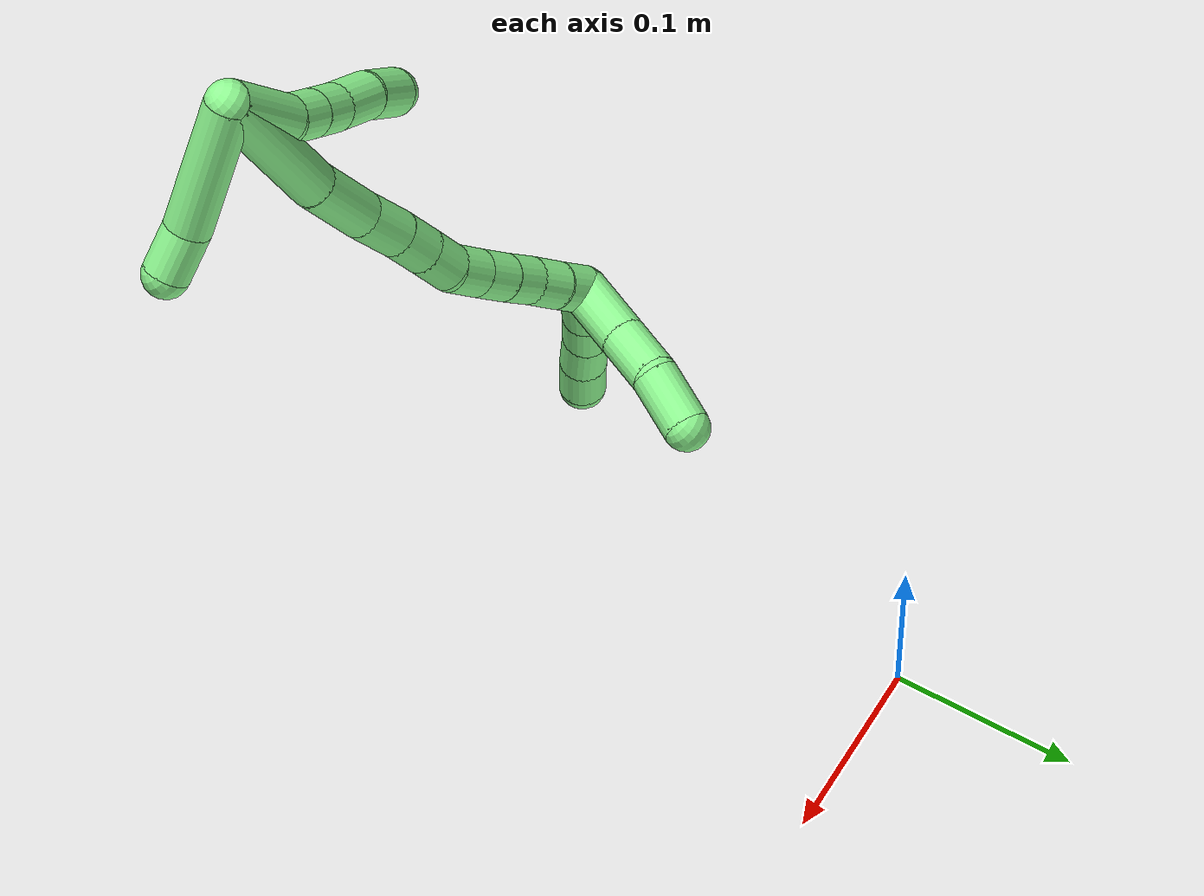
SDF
<sdf version="1.7">
 <world name="default">
  <model name="13">
   <static>0</static>
   <link name="13">
    <collision name="collision-cylinder-e_1_2_8">
     <pose>-0.012382 0.000265 -0.020167 -3.12847 -0.550575 3.09514</pose>
     <geometry><cylinder><radius>0.0125</radius><length>0.047333</length></cylinder></geometry>
     <surface>
      <friction><ode><mu>1.16</mu><mu2>1.16</mu2><slip1>0</slip1><slip2>0</slip2></ode></friction>
      <contact><ode><kp>1e+06</kp><kd>1</kd><max_vel>0</max_vel><min_depth>0.001</min_depth></ode></contact>
     </surface>
    </collision>
    <visual name="visual-cylinder-e_1_2_8">
     <pose>-0.012382 0.000265 -0.020167 -3.12847 -0.550575 3.09514</pose>
     <geometry><cylinder><radius>0.0125</radius><length>0.047333</length></cylinder></geometry>
     <material><ambient>0.564706 0.984314 0.572549 1</ambient></material>
    </visual>
    <collision name="collision-cylinder-e_2_8_9">
     <pose>-0.032703 0.001757 -0.047706 -2.97651 -0.815654 2.76322</pose>
     <geometry><cylinder><radius>0.0125</radius><length>0.021805</length></cylinder></geometry>
     <surface>
      <friction><ode><mu>1.16</mu><mu2>1.16</mu2><slip1>0</slip1><slip2>0</slip2></ode></friction>
      <contact><ode><kp>1e+06</kp><kd>1</kd><max_vel>0</max_vel><min_depth>0.001</min_depth></ode></contact>
     </surface>
    </collision>
    <visual name="visual-cylinder-e_2_8_9">
     <pose>-0.032703 0.001757 -0.047706 -2.97651 -0.815654 2.76322</pose>
     <geometry><cylinder><radius>0.0125</radius><length>0.021805</length></cylinder></geometry>
     <material><ambient>0.564706 0.984314 0.572549 1</ambient></material>
    </visual>
    <collision name="collision-cylinder-e_3_9_10">
     <pose>-0.048716 0.004151 -0.062374 -2.98316 -0.829661 2.78492</pose>
     <geometry><cylinder><radius>0.0125</radius><length>0.021892</length></cylinder></geometry>
     <surface>
      <friction><ode><mu>1.16</mu><mu2>1.16</mu2><slip1>0</slip1><slip2>0</slip2></ode></friction>
      <contact><ode><kp>1e+06</kp><kd>1</kd><max_vel>0</max_vel><min_depth>0.001</min_depth></ode></contact>
     </surface>
    </collision>
    <visual name="visual-cylinder-e_3_9_10">
     <pose>-0.048716 0.004151 -0.062374 -2.98316 -0.829661 2.78492</pose>
     <geometry><cylinder><radius>0.0125</radius><length>0.021892</length></cylinder></geometry>
     <material><ambient>0.564706 0.984314 0.572549 1</ambient></material>
    </visual>
    <collision name="collision-cylinder-e_4_10_11">
     <pose>-0.067627 0.008144 -0.078901 -2.84441 -0.843111 2.49723</pose>
     <geometry><cylinder><radius>0.0125</radius><length>0.029024</length></cylinder></geometry>
     <surface>
      <friction><ode><mu>1.16</mu><mu2>1.16</mu2><slip1>0</slip1><slip2>0</slip2></ode></friction>
      <contact><ode><kp>1e+06</kp><kd>1</kd><max_vel>0</max_vel><min_depth>0.001</min_depth></ode></contact>
     </surface>
    </collision>
    <visual name="visual-cylinder-e_4_10_11">
     <pose>-0.067627 0.008144 -0.078901 -2.84441 -0.843111 2.49723</pose>
     <geometry><cylinder><radius>0.0125</radius><length>0.029024</length></cylinder></geometry>
     <material><ambient>0.564706 0.984314 0.572549 1</ambient></material>
    </visual>
    <collision name="collision-cylinder-e_5_11_6">
     <pose>-0.089127 0.011486 -0.098629 -3.09248 -0.7926 3.02433</pose>
     <geometry><cylinder><radius>0.0125</radius><length>0.029946</length></cylinder></geometry>
     <surface>
      <friction><ode><mu>1.16</mu><mu2>1.16</mu2><slip1>0</slip1><slip2>0</slip2></ode></friction>
      <contact><ode><kp>1e+06</kp><kd>1</kd><max_vel>0</max_vel><min_depth>0.001</min_depth></ode></contact>
     </surface>
    </collision>
    <visual name="visual-cylinder-e_5_11_6">
     <pose>-0.089127 0.011486 -0.098629 -3.09248 -0.7926 3.02433</pose>
     <geometry><cylinder><radius>0.0125</radius><length>0.029946</length></cylinder></geometry>
     <material><ambient>0.564706 0.984314 0.572549 1</ambient></material>
    </visual>
    <collision name="collision-cylinder-e_1_2_12">
     <pose>0.002033 -0.032184 -0.017875 2.07777 0.055178 0.093719</pose>
     <geometry><cylinder><radius>0.0125</radius><length>0.073742</length></cylinder></geometry>
     <surface>
      <friction><ode><mu>1.16</mu><mu2>1.16</mu2><slip1>0</slip1><slip2>0</slip2></ode></friction>
      <contact><ode><kp>1e+06</kp><kd>1</kd><max_vel>0</max_vel><min_depth>0.001</min_depth></ode></contact>
     </surface>
    </collision>
    <visual name="visual-cylinder-e_1_2_12">
     <pose>0.002033 -0.032184 -0.017875 2.07777 0.055178 0.093719</pose>
     <geometry><cylinder><radius>0.0125</radius><length>0.073742</length></cylinder></geometry>
     <material><ambient>0.564706 0.984314 0.572549 1</ambient></material>
    </visual>
    <collision name="collision-cylinder-e_2_12_5">
     <pose>0.007046 -0.076379 -0.040136 1.92093 0.228938 0.325852</pose>
     <geometry><cylinder><radius>0.0125</radius><length>0.026258</length></cylinder></geometry>
     <surface>
      <friction><ode><mu>1.16</mu><mu2>1.16</mu2><slip1>0</slip1><slip2>0</slip2></ode></friction>
      <contact><ode><kp>1e+06</kp><kd>1</kd><max_vel>0</max_vel><min_depth>0.001</min_depth></ode></contact>
     </surface>
    </collision>
    <visual name="visual-cylinder-e_2_12_5">
     <pose>0.007046 -0.076379 -0.040136 1.92093 0.228938 0.325852</pose>
     <geometry><cylinder><radius>0.0125</radius><length>0.026258</length></cylinder></geometry>
     <material><ambient>0.564706 0.984314 0.572549 1</ambient></material>
    </visual>
    <collision name="collision-cylinder-e_1_2_13">
     <pose>-0.014163 -0.010078 -0.039748 2.89329 -0.332569 -1.86286</pose>
     <geometry><cylinder><radius>0.0125</radius><length>0.086765</length></cylinder></geometry>
     <surface>
      <friction><ode><mu>1.16</mu><mu2>1.16</mu2><slip1>0</slip1><slip2>0</slip2></ode></friction>
      <contact><ode><kp>1e+06</kp><kd>1</kd><max_vel>0</max_vel><min_depth>0.001</min_depth></ode></contact>
     </surface>
    </collision>
    <visual name="visual-cylinder-e_1_2_13">
     <pose>-0.014163 -0.010078 -0.039748 2.89329 -0.332569 -1.86286</pose>
     <geometry><cylinder><radius>0.0125</radius><length>0.086765</length></cylinder></geometry>
     <material><ambient>0.564706 0.984314 0.572549 1</ambient></material>
    </visual>
    <collision name="collision-cylinder-e_2_13_14">
     <pose>-0.035937 -0.022443 -0.099179 3.0259 -0.366687 -2.53618</pose>
     <geometry><cylinder><radius>0.0125</radius><length>0.042454</length></cylinder></geometry>
     <surface>
      <friction><ode><mu>1.16</mu><mu2>1.16</mu2><slip1>0</slip1><slip2>0</slip2></ode></friction>
      <contact><ode><kp>1e+06</kp><kd>1</kd><max_vel>0</max_vel><min_depth>0.001</min_depth></ode></contact>
     </surface>
    </collision>
    <visual name="visual-cylinder-e_2_13_14">
     <pose>-0.035937 -0.022443 -0.099179 3.0259 -0.366687 -2.53618</pose>
     <geometry><cylinder><radius>0.0125</radius><length>0.042454</length></cylinder></geometry>
     <material><ambient>0.564706 0.984314 0.572549 1</ambient></material>
    </visual>
    <collision name="collision-cylinder-e_3_14_15">
     <pose>-0.047472 -0.024733 -0.13204 3.14136 -0.289482 -3.13998</pose>
     <geometry><cylinder><radius>0.0125</radius><length>0.027501</length></cylinder></geometry>
     <surface>
      <friction><ode><mu>1.16</mu><mu2>1.16</mu2><slip1>0</slip1><slip2>0</slip2></ode></friction>
      <contact><ode><kp>1e+06</kp><kd>1</kd><max_vel>0</max_vel><min_depth>0.001</min_depth></ode></contact>
     </surface>
    </collision>
    <visual name="visual-cylinder-e_3_14_15">
     <pose>-0.047472 -0.024733 -0.13204 3.14136 -0.289482 -3.13998</pose>
     <geometry><cylinder><radius>0.0125</radius><length>0.027501</length></cylinder></geometry>
     <material><ambient>0.564706 0.984314 0.572549 1</ambient></material>
    </visual>
    <collision name="collision-cylinder-e_4_15_16">
     <pose>-0.05407 -0.025218 -0.155539 3.09493 -0.253166 -2.77892</pose>
     <geometry><cylinder><radius>0.0125</radius><length>0.021344</length></cylinder></geometry>
     <surface>
      <friction><ode><mu>1.16</mu><mu2>1.16</mu2><slip1>0</slip1><slip2>0</slip2></ode></friction>
      <contact><ode><kp>1e+06</kp><kd>1</kd><max_vel>0</max_vel><min_depth>0.001</min_depth></ode></contact>
     </surface>
    </collision>
    <visual name="visual-cylinder-e_4_15_16">
     <pose>-0.05407 -0.025218 -0.155539 3.09493 -0.253166 -2.77892</pose>
     <geometry><cylinder><radius>0.0125</radius><length>0.021344</length></cylinder></geometry>
     <material><ambient>0.564706 0.984314 0.572549 1</ambient></material>
    </visual>
    <collision name="collision-cylinder-e_5_16_17">
     <pose>-0.059106 -0.026158 -0.176201 3.09734 -0.224374 -2.75364</pose>
     <geometry><cylinder><radius>0.0125</radius><length>0.021234</length></cylinder></geometry>
     <surface>
      <friction><ode><mu>1.16</mu><mu2>1.16</mu2><slip1>0</slip1><slip2>0</slip2></ode></friction>
      <contact><ode><kp>1e+06</kp><kd>1</kd><max_vel>0</max_vel><min_depth>0.001</min_depth></ode></contact>
     </surface>
    </collision>
    <visual name="visual-cylinder-e_5_16_17">
     <pose>-0.059106 -0.026158 -0.176201 3.09734 -0.224374 -2.75364</pose>
     <geometry><cylinder><radius>0.0125</radius><length>0.021234</length></cylinder></geometry>
     <material><ambient>0.564706 0.984314 0.572549 1</ambient></material>
    </visual>
    <collision name="collision-cylinder-e_6_17_18">
     <pose>-0.06601 -0.025306 -0.195423 -2.99522 -0.46836 2.54525</pose>
     <geometry><cylinder><radius>0.0125</radius><length>0.020122</length></cylinder></geometry>
     <surface>
      <friction><ode><mu>1.16</mu><mu2>1.16</mu2><slip1>0</slip1><slip2>0</slip2></ode></friction>
      <contact><ode><kp>1e+06</kp><kd>1</kd><max_vel>0</max_vel><min_depth>0.001</min_depth></ode></contact>
     </surface>
    </collision>
    <visual name="visual-cylinder-e_6_17_18">
     <pose>-0.06601 -0.025306 -0.195423 -2.99522 -0.46836 2.54525</pose>
     <geometry><cylinder><radius>0.0125</radius><length>0.020122</length></cylinder></geometry>
     <material><ambient>0.564706 0.984314 0.572549 1</ambient></material>
    </visual>
    <collision name="collision-cylinder-e_7_18_19">
     <pose>-0.075242 -0.022573 -0.213299 -2.98459 -0.475634 2.51401</pose>
     <geometry><cylinder><radius>0.0125</radius><length>0.020488</length></cylinder></geometry>
     <surface>
      <friction><ode><mu>1.16</mu><mu2>1.16</mu2><slip1>0</slip1><slip2>0</slip2></ode></friction>
      <contact><ode><kp>1e+06</kp><kd>1</kd><max_vel>0</max_vel><min_depth>0.001</min_depth></ode></contact>
     </surface>
    </collision>
    <visual name="visual-cylinder-e_7_18_19">
     <pose>-0.075242 -0.022573 -0.213299 -2.98459 -0.475634 2.51401</pose>
     <geometry><cylinder><radius>0.0125</radius><length>0.020488</length></cylinder></geometry>
     <material><ambient>0.564706 0.984314 0.572549 1</ambient></material>
    </visual>
    <collision name="collision-cylinder-e_8_19_20">
     <pose>-0.084921 -0.019819 -0.230891 -2.98808 -0.520656 2.57945</pose>
     <geometry><cylinder><radius>0.0125</radius><length>0.020058</length></cylinder></geometry>
     <surface>
      <friction><ode><mu>1.16</mu><mu2>1.16</mu2><slip1>0</slip1><slip2>0</slip2></ode></friction>
      <contact><ode><kp>1e+06</kp><kd>1</kd><max_vel>0</max_vel><min_depth>0.001</min_depth></ode></contact>
     </surface>
    </collision>
    <visual name="visual-cylinder-e_8_19_20">
     <pose>-0.084921 -0.019819 -0.230891 -2.98808 -0.520656 2.57945</pose>
     <geometry><cylinder><radius>0.0125</radius><length>0.020058</length></cylinder></geometry>
     <material><ambient>0.564706 0.984314 0.572549 1</ambient></material>
    </visual>
    <collision name="collision-cylinder-e_9_20_21">
     <pose>-0.093894 -0.016599 -0.248469 -2.93416 -0.409593 2.21247</pose>
     <geometry><cylinder><radius>0.0125</radius><length>0.020008</length></cylinder></geometry>
     <surface>
      <friction><ode><mu>1.16</mu><mu2>1.16</mu2><slip1>0</slip1><slip2>0</slip2></ode></friction>
      <contact><ode><kp>1e+06</kp><kd>1</kd><max_vel>0</max_vel><min_depth>0.001</min_depth></ode></contact>
     </surface>
    </collision>
    <visual name="visual-cylinder-e_9_20_21">
     <pose>-0.093894 -0.016599 -0.248469 -2.93416 -0.409593 2.21247</pose>
     <geometry><cylinder><radius>0.0125</radius><length>0.020008</length></cylinder></geometry>
     <material><ambient>0.564706 0.984314 0.572549 1</ambient></material>
    </visual>
    <collision name="collision-cylinder-e_10_21_1">
     <pose>-0.102493 -0.013238 -0.266213 -2.97534 -0.478951 2.48389</pose>
     <geometry><cylinder><radius>0.0125</radius><length>0.020028</length></cylinder></geometry>
     <surface>
      <friction><ode><mu>1.16</mu><mu2>1.16</mu2><slip1>0</slip1><slip2>0</slip2></ode></friction>
      <contact><ode><kp>1e+06</kp><kd>1</kd><max_vel>0</max_vel><min_depth>0.001</min_depth></ode></contact>
     </surface>
    </collision>
    <visual name="visual-cylinder-e_10_21_1">
     <pose>-0.102493 -0.013238 -0.266213 -2.97534 -0.478951 2.48389</pose>
     <geometry><cylinder><radius>0.0125</radius><length>0.020028</length></cylinder></geometry>
     <material><ambient>0.564706 0.984314 0.572549 1</ambient></material>
    </visual>
    <collision name="collision-cylinder-e_1_1_22">
     <pose>-0.091742 -0.008192 -0.28433 -2.77643 0.993266 -2.48486</pose>
     <geometry><cylinder><radius>0.0125</radius><length>0.036682</length></cylinder></geometry>
     <surface>
      <friction><ode><mu>1.16</mu><mu2>1.16</mu2><slip1>0</slip1><slip2>0</slip2></ode></friction>
      <contact><ode><kp>1e+06</kp><kd>1</kd><max_vel>0</max_vel><min_depth>0.001</min_depth></ode></contact>
     </surface>
    </collision>
    <visual name="visual-cylinder-e_1_1_22">
     <pose>-0.091742 -0.008192 -0.28433 -2.77643 0.993266 -2.48486</pose>
     <geometry><cylinder><radius>0.0125</radius><length>0.036682</length></cylinder></geometry>
     <material><ambient>0.564706 0.984314 0.572549 1</ambient></material>
    </visual>
    <collision name="collision-cylinder-e_2_22_23">
     <pose>-0.062764 -0.000983 -0.299615 -2.59207 1.09835 -2.27828</pose>
     <geometry><cylinder><radius>0.0125</radius><length>0.030571</length></cylinder></geometry>
     <surface>
      <friction><ode><mu>1.16</mu><mu2>1.16</mu2><slip1>0</slip1><slip2>0</slip2></ode></friction>
      <contact><ode><kp>1e+06</kp><kd>1</kd><max_vel>0</max_vel><min_depth>0.001</min_depth></ode></contact>
     </surface>
    </collision>
    <visual name="visual-cylinder-e_2_22_23">
     <pose>-0.062764 -0.000983 -0.299615 -2.59207 1.09835 -2.27828</pose>
     <geometry><cylinder><radius>0.0125</radius><length>0.030571</length></cylinder></geometry>
     <material><ambient>0.564706 0.984314 0.572549 1</ambient></material>
    </visual>
    <collision name="collision-cylinder-e_3_23_4">
     <pose>-0.035913 0.003165 -0.315167 -3.08808 0.941752 -3.03656</pose>
     <geometry><cylinder><radius>0.0125</radius><length>0.032747</length></cylinder></geometry>
     <surface>
      <friction><ode><mu>1.16</mu><mu2>1.16</mu2><slip1>0</slip1><slip2>0</slip2></ode></friction>
      <contact><ode><kp>1e+06</kp><kd>1</kd><max_vel>0</max_vel><min_depth>0.001</min_depth></ode></contact>
     </surface>
    </collision>
    <visual name="visual-cylinder-e_3_23_4">
     <pose>-0.035913 0.003165 -0.315167 -3.08808 0.941752 -3.03656</pose>
     <geometry><cylinder><radius>0.0125</radius><length>0.032747</length></cylinder></geometry>
     <material><ambient>0.564706 0.984314 0.572549 1</ambient></material>
    </visual>
    <collision name="collision-cylinder-e_1_1_24">
     <pose>-0.112083 -0.019625 -0.285049 2.47909 -0.371409 -0.999922</pose>
     <geometry><cylinder><radius>0.0125</radius><length>0.027418</length></cylinder></geometry>
     <surface>
      <friction><ode><mu>1.16</mu><mu2>1.16</mu2><slip1>0</slip1><slip2>0</slip2></ode></friction>
      <contact><ode><kp>1e+06</kp><kd>1</kd><max_vel>0</max_vel><min_depth>0.001</min_depth></ode></contact>
     </surface>
    </collision>
    <visual name="visual-cylinder-e_1_1_24">
     <pose>-0.112083 -0.019625 -0.285049 2.47909 -0.371409 -0.999922</pose>
     <geometry><cylinder><radius>0.0125</radius><length>0.027418</length></cylinder></geometry>
     <material><ambient>0.564706 0.984314 0.572549 1</ambient></material>
    </visual>
    <collision name="collision-cylinder-e_2_24_25">
     <pose>-0.12133 -0.034371 -0.303138 2.43171 -0.38408 -0.966259</pose>
     <geometry><cylinder><radius>0.0125</radius><length>0.022801</length></cylinder></geometry>
     <surface>
      <friction><ode><mu>1.16</mu><mu2>1.16</mu2><slip1>0</slip1><slip2>0</slip2></ode></friction>
      <contact><ode><kp>1e+06</kp><kd>1</kd><max_vel>0</max_vel><min_depth>0.001</min_depth></ode></contact>
     </surface>
    </collision>
    <visual name="visual-cylinder-e_2_24_25">
     <pose>-0.12133 -0.034371 -0.303138 2.43171 -0.38408 -0.966259</pose>
     <geometry><cylinder><radius>0.0125</radius><length>0.022801</length></cylinder></geometry>
     <material><ambient>0.564706 0.984314 0.572549 1</ambient></material>
    </visual>
    <collision name="collision-cylinder-e_3_25_26">
     <pose>-0.130408 -0.049709 -0.319731 2.3637 -0.379818 -0.877159</pose>
     <geometry><cylinder><radius>0.0125</radius><length>0.025925</length></cylinder></geometry>
     <surface>
      <friction><ode><mu>1.16</mu><mu2>1.16</mu2><slip1>0</slip1><slip2>0</slip2></ode></friction>
      <contact><ode><kp>1e+06</kp><kd>1</kd><max_vel>0</max_vel><min_depth>0.001</min_depth></ode></contact>
     </surface>
    </collision>
    <visual name="visual-cylinder-e_3_25_26">
     <pose>-0.130408 -0.049709 -0.319731 2.3637 -0.379818 -0.877159</pose>
     <geometry><cylinder><radius>0.0125</radius><length>0.025925</length></cylinder></geometry>
     <material><ambient>0.564706 0.984314 0.572549 1</ambient></material>
    </visual>
    <collision name="collision-cylinder-e_4_26_3">
     <pose>-0.138836 -0.06581 -0.33671 2.40287 -0.308529 -0.763903</pose>
     <geometry><cylinder><radius>0.0125</radius><length>0.023855</length></cylinder></geometry>
     <surface>
      <friction><ode><mu>1.16</mu><mu2>1.16</mu2><slip1>0</slip1><slip2>0</slip2></ode></friction>
      <contact><ode><kp>1e+06</kp><kd>1</kd><max_vel>0</max_vel><min_depth>0.001</min_depth></ode></contact>
     </surface>
    </collision>
    <visual name="visual-cylinder-e_4_26_3">
     <pose>-0.138836 -0.06581 -0.33671 2.40287 -0.308529 -0.763903</pose>
     <geometry><cylinder><radius>0.0125</radius><length>0.023855</length></cylinder></geometry>
     <material><ambient>0.564706 0.984314 0.572549 1</ambient></material>
    </visual>
    <collision name="collision-sphere-3">
     <pose>-0.142458 -0.073462 -0.345112 0 -0 0</pose>
     <geometry><sphere><radius>0.0125</radius></sphere></geometry>
     <surface>
      <friction><ode><mu>1.16</mu><mu2>1.16</mu2><slip1>0</slip1><slip2>0</slip2></ode></friction>
      <contact><ode><kp>1e+06</kp><kd>1</kd><max_vel>0</max_vel><min_depth>0.001</min_depth></ode></contact>
     </surface>
    </collision>
    <visual name="visual-sphere-3">
     <pose>-0.142458 -0.073462 -0.345112 0 -0 0</pose>
     <geometry><sphere><radius>0.0125</radius></sphere></geometry>
     <material><ambient>0.564706 0.984314 0.572549 1</ambient></material>
    </visual>
    <collision name="collision-sphere-26">
     <pose>-0.135214 -0.058157 -0.328307 0 -0 0</pose>
     <geometry><sphere><radius>0.0125</radius></sphere></geometry>
     <surface>
      <friction><ode><mu>1.16</mu><mu2>1.16</mu2><slip1>0</slip1><slip2>0</slip2></ode></friction>
      <contact><ode><kp>1e+06</kp><kd>1</kd><max_vel>0</max_vel><min_depth>0.001</min_depth></ode></contact>
     </surface>
    </collision>
    <visual name="visual-sphere-26">
     <pose>-0.135214 -0.058157 -0.328307 0 -0 0</pose>
     <geometry><sphere><radius>0.0125</radius></sphere></geometry>
     <material><ambient>0.564706 0.984314 0.572549 1</ambient></material>
    </visual>
    <collision name="collision-sphere-25">
     <pose>-0.125602 -0.04126 -0.311154 0 -0 0</pose>
     <geometry><sphere><radius>0.0125</radius></sphere></geometry>
     <surface>
      <friction><ode><mu>1.16</mu><mu2>1.16</mu2><slip1>0</slip1><slip2>0</slip2></ode></friction>
      <contact><ode><kp>1e+06</kp><kd>1</kd><max_vel>0</max_vel><min_depth>0.001</min_depth></ode></contact>
     </surface>
    </collision>
    <visual name="visual-sphere-25">
     <pose>-0.125602 -0.04126 -0.311154 0 -0 0</pose>
     <geometry><sphere><radius>0.0125</radius></sphere></geometry>
     <material><ambient>0.564706 0.984314 0.572549 1</ambient></material>
    </visual>
    <collision name="collision-sphere-24">
     <pose>-0.117059 -0.027482 -0.295121 0 -0 0</pose>
     <geometry><sphere><radius>0.0125</radius></sphere></geometry>
     <surface>
      <friction><ode><mu>1.16</mu><mu2>1.16</mu2><slip1>0</slip1><slip2>0</slip2></ode></friction>
      <contact><ode><kp>1e+06</kp><kd>1</kd><max_vel>0</max_vel><min_depth>0.001</min_depth></ode></contact>
     </surface>
    </collision>
    <visual name="visual-sphere-24">
     <pose>-0.117059 -0.027482 -0.295121 0 -0 0</pose>
     <geometry><sphere><radius>0.0125</radius></sphere></geometry>
     <material><ambient>0.564706 0.984314 0.572549 1</ambient></material>
    </visual>
    <collision name="collision-sphere-4">
     <pose>-0.022674 0.00368 -0.324787 0 -0 0</pose>
     <geometry><sphere><radius>0.0125</radius></sphere></geometry>
     <surface>
      <friction><ode><mu>1.16</mu><mu2>1.16</mu2><slip1>0</slip1><slip2>0</slip2></ode></friction>
      <contact><ode><kp>1e+06</kp><kd>1</kd><max_vel>0</max_vel><min_depth>0.001</min_depth></ode></contact>
     </surface>
    </collision>
    <visual name="visual-sphere-4">
     <pose>-0.022674 0.00368 -0.324787 0 -0 0</pose>
     <geometry><sphere><radius>0.0125</radius></sphere></geometry>
     <material><ambient>0.564706 0.984314 0.572549 1</ambient></material>
    </visual>
    <collision name="collision-sphere-23">
     <pose>-0.049153 0.00265 -0.305547 0 -0 0</pose>
     <geometry><sphere><radius>0.0125</radius></sphere></geometry>
     <surface>
      <friction><ode><mu>1.16</mu><mu2>1.16</mu2><slip1>0</slip1><slip2>0</slip2></ode></friction>
      <contact><ode><kp>1e+06</kp><kd>1</kd><max_vel>0</max_vel><min_depth>0.001</min_depth></ode></contact>
     </surface>
    </collision>
    <visual name="visual-sphere-23">
     <pose>-0.049153 0.00265 -0.305547 0 -0 0</pose>
     <geometry><sphere><radius>0.0125</radius></sphere></geometry>
     <material><ambient>0.564706 0.984314 0.572549 1</ambient></material>
    </visual>
    <collision name="collision-sphere-22">
     <pose>-0.076375 -0.004616 -0.293684 0 -0 0</pose>
     <geometry><sphere><radius>0.0125</radius></sphere></geometry>
     <surface>
      <friction><ode><mu>1.16</mu><mu2>1.16</mu2><slip1>0</slip1><slip2>0</slip2></ode></friction>
      <contact><ode><kp>1e+06</kp><kd>1</kd><max_vel>0</max_vel><min_depth>0.001</min_depth></ode></contact>
     </surface>
    </collision>
    <visual name="visual-sphere-22">
     <pose>-0.076375 -0.004616 -0.293684 0 -0 0</pose>
     <geometry><sphere><radius>0.0125</radius></sphere></geometry>
     <material><ambient>0.564706 0.984314 0.572549 1</ambient></material>
    </visual>
    <collision name="collision-sphere-1">
     <pose>-0.107108 -0.011768 -0.274977 0 -0 0</pose>
     <geometry><sphere><radius>0.0125</radius></sphere></geometry>
     <surface>
      <friction><ode><mu>1.16</mu><mu2>1.16</mu2><slip1>0</slip1><slip2>0</slip2></ode></friction>
      <contact><ode><kp>1e+06</kp><kd>1</kd><max_vel>0</max_vel><min_depth>0.001</min_depth></ode></contact>
     </surface>
    </collision>
    <visual name="visual-sphere-1">
     <pose>-0.107108 -0.011768 -0.274977 0 -0 0</pose>
     <geometry><sphere><radius>0.0125</radius></sphere></geometry>
     <material><ambient>0.564706 0.984314 0.572549 1</ambient></material>
    </visual>
    <collision name="collision-sphere-21">
     <pose>-0.097878 -0.014709 -0.257448 0 -0 0</pose>
     <geometry><sphere><radius>0.0125</radius></sphere></geometry>
     <surface>
      <friction><ode><mu>1.16</mu><mu2>1.16</mu2><slip1>0</slip1><slip2>0</slip2></ode></friction>
      <contact><ode><kp>1e+06</kp><kd>1</kd><max_vel>0</max_vel><min_depth>0.001</min_depth></ode></contact>
     </surface>
    </collision>
    <visual name="visual-sphere-21">
     <pose>-0.097878 -0.014709 -0.257448 0 -0 0</pose>
     <geometry><sphere><radius>0.0125</radius></sphere></geometry>
     <material><ambient>0.564706 0.984314 0.572549 1</ambient></material>
    </visual>
    <collision name="collision-sphere-6">
     <pose>-0.099791 0.012002 -0.109127 0 -0 0</pose>
     <geometry><sphere><radius>0.0125</radius></sphere></geometry>
     <surface>
      <friction><ode><mu>1.16</mu><mu2>1.16</mu2><slip1>0</slip1><slip2>0</slip2></ode></friction>
      <contact><ode><kp>1e+06</kp><kd>1</kd><max_vel>0</max_vel><min_depth>0.001</min_depth></ode></contact>
     </surface>
    </collision>
    <visual name="visual-sphere-6">
     <pose>-0.099791 0.012002 -0.109127 0 -0 0</pose>
     <geometry><sphere><radius>0.0125</radius></sphere></geometry>
     <material><ambient>0.564706 0.984314 0.572549 1</ambient></material>
    </visual>
    <collision name="collision-sphere-11">
     <pose>-0.078464 0.01097 -0.08813 0 -0 0</pose>
     <geometry><sphere><radius>0.0125</radius></sphere></geometry>
     <surface>
      <friction><ode><mu>1.16</mu><mu2>1.16</mu2><slip1>0</slip1><slip2>0</slip2></ode></friction>
      <contact><ode><kp>1e+06</kp><kd>1</kd><max_vel>0</max_vel><min_depth>0.001</min_depth></ode></contact>
     </surface>
    </collision>
    <visual name="visual-sphere-11">
     <pose>-0.078464 0.01097 -0.08813 0 -0 0</pose>
     <geometry><sphere><radius>0.0125</radius></sphere></geometry>
     <material><ambient>0.564706 0.984314 0.572549 1</ambient></material>
    </visual>
    <collision name="collision-sphere-10">
     <pose>-0.056791 0.005317 -0.069672 0 -0 0</pose>
     <geometry><sphere><radius>0.0125</radius></sphere></geometry>
     <surface>
      <friction><ode><mu>1.16</mu><mu2>1.16</mu2><slip1>0</slip1><slip2>0</slip2></ode></friction>
      <contact><ode><kp>1e+06</kp><kd>1</kd><max_vel>0</max_vel><min_depth>0.001</min_depth></ode></contact>
     </surface>
    </collision>
    <visual name="visual-sphere-10">
     <pose>-0.056791 0.005317 -0.069672 0 -0 0</pose>
     <geometry><sphere><radius>0.0125</radius></sphere></geometry>
     <material><ambient>0.564706 0.984314 0.572549 1</ambient></material>
    </visual>
    <collision name="collision-sphere-9">
     <pose>-0.040642 0.002985 -0.055077 0 -0 0</pose>
     <geometry><sphere><radius>0.0125</radius></sphere></geometry>
     <surface>
      <friction><ode><mu>1.16</mu><mu2>1.16</mu2><slip1>0</slip1><slip2>0</slip2></ode></friction>
      <contact><ode><kp>1e+06</kp><kd>1</kd><max_vel>0</max_vel><min_depth>0.001</min_depth></ode></contact>
     </surface>
    </collision>
    <visual name="visual-sphere-9">
     <pose>-0.040642 0.002985 -0.055077 0 -0 0</pose>
     <geometry><sphere><radius>0.0125</radius></sphere></geometry>
     <material><ambient>0.564706 0.984314 0.572549 1</ambient></material>
    </visual>
    <collision name="collision-sphere-2">
     <geometry><sphere><radius>0.0125</radius></sphere></geometry>
     <surface>
      <friction><ode><mu>1.16</mu><mu2>1.16</mu2><slip1>0</slip1><slip2>0</slip2></ode></friction>
      <contact><ode><kp>1e+06</kp><kd>1</kd><max_vel>0</max_vel><min_depth>0.001</min_depth></ode></contact>
     </surface>
    </collision>
    <visual name="visual-sphere-2">
     <geometry><sphere><radius>0.0125</radius></sphere></geometry>
     <material><ambient>0.564706 0.984314 0.572549 1</ambient></material>
    </visual>
    <collision name="collision-sphere-19">
     <pose>-0.079933 -0.021149 -0.222294 0 -0 0</pose>
     <geometry><sphere><radius>0.0125</radius></sphere></geometry>
     <surface>
      <friction><ode><mu>1.16</mu><mu2>1.16</mu2><slip1>0</slip1><slip2>0</slip2></ode></friction>
      <contact><ode><kp>1e+06</kp><kd>1</kd><max_vel>0</max_vel><min_depth>0.001</min_depth></ode></contact>
     </surface>
    </collision>
    <visual name="visual-sphere-19">
     <pose>-0.079933 -0.021149 -0.222294 0 -0 0</pose>
     <geometry><sphere><radius>0.0125</radius></sphere></geometry>
     <material><ambient>0.564706 0.984314 0.572549 1</ambient></material>
    </visual>
    <collision name="collision-sphere-8">
     <pose>-0.024764 0.000529 -0.040335 0 -0 0</pose>
     <geometry><sphere><radius>0.0125</radius></sphere></geometry>
     <surface>
      <friction><ode><mu>1.16</mu><mu2>1.16</mu2><slip1>0</slip1><slip2>0</slip2></ode></friction>
      <contact><ode><kp>1e+06</kp><kd>1</kd><max_vel>0</max_vel><min_depth>0.001</min_depth></ode></contact>
     </surface>
    </collision>
    <visual name="visual-sphere-8">
     <pose>-0.024764 0.000529 -0.040335 0 -0 0</pose>
     <geometry><sphere><radius>0.0125</radius></sphere></geometry>
     <material><ambient>0.564706 0.984314 0.572549 1</ambient></material>
    </visual>
    <collision name="collision-sphere-12">
     <pose>0.004067 -0.064368 -0.03575 0 -0 0</pose>
     <geometry><sphere><radius>0.0125</radius></sphere></geometry>
     <surface>
      <friction><ode><mu>1.16</mu><mu2>1.16</mu2><slip1>0</slip1><slip2>0</slip2></ode></friction>
      <contact><ode><kp>1e+06</kp><kd>1</kd><max_vel>0</max_vel><min_depth>0.001</min_depth></ode></contact>
     </surface>
    </collision>
    <visual name="visual-sphere-12">
     <pose>0.004067 -0.064368 -0.03575 0 -0 0</pose>
     <geometry><sphere><radius>0.0125</radius></sphere></geometry>
     <material><ambient>0.564706 0.984314 0.572549 1</ambient></material>
    </visual>
    <collision name="collision-sphere-5">
     <pose>0.010026 -0.08839 -0.044522 0 -0 0</pose>
     <geometry><sphere><radius>0.0125</radius></sphere></geometry>
     <surface>
      <friction><ode><mu>1.16</mu><mu2>1.16</mu2><slip1>0</slip1><slip2>0</slip2></ode></friction>
      <contact><ode><kp>1e+06</kp><kd>1</kd><max_vel>0</max_vel><min_depth>0.001</min_depth></ode></contact>
     </surface>
    </collision>
    <visual name="visual-sphere-5">
     <pose>0.010026 -0.08839 -0.044522 0 -0 0</pose>
     <geometry><sphere><radius>0.0125</radius></sphere></geometry>
     <material><ambient>0.564706 0.984314 0.572549 1</ambient></material>
    </visual>
    <collision name="collision-sphere-13">
     <pose>-0.028326 -0.020155 -0.079496 0 -0 0</pose>
     <geometry><sphere><radius>0.0125</radius></sphere></geometry>
     <surface>
      <friction><ode><mu>1.16</mu><mu2>1.16</mu2><slip1>0</slip1><slip2>0</slip2></ode></friction>
      <contact><ode><kp>1e+06</kp><kd>1</kd><max_vel>0</max_vel><min_depth>0.001</min_depth></ode></contact>
     </surface>
    </collision>
    <visual name="visual-sphere-13">
     <pose>-0.028326 -0.020155 -0.079496 0 -0 0</pose>
     <geometry><sphere><radius>0.0125</radius></sphere></geometry>
     <material><ambient>0.564706 0.984314 0.572549 1</ambient></material>
    </visual>
    <collision name="collision-sphere-14">
     <pose>-0.043547 -0.02473 -0.118862 0 -0 0</pose>
     <geometry><sphere><radius>0.0125</radius></sphere></geometry>
     <surface>
      <friction><ode><mu>1.16</mu><mu2>1.16</mu2><slip1>0</slip1><slip2>0</slip2></ode></friction>
      <contact><ode><kp>1e+06</kp><kd>1</kd><max_vel>0</max_vel><min_depth>0.001</min_depth></ode></contact>
     </surface>
    </collision>
    <visual name="visual-sphere-14">
     <pose>-0.043547 -0.02473 -0.118862 0 -0 0</pose>
     <geometry><sphere><radius>0.0125</radius></sphere></geometry>
     <material><ambient>0.564706 0.984314 0.572549 1</ambient></material>
    </visual>
    <collision name="collision-sphere-15">
     <pose>-0.051397 -0.024736 -0.145219 0 -0 0</pose>
     <geometry><sphere><radius>0.0125</radius></sphere></geometry>
     <surface>
      <friction><ode><mu>1.16</mu><mu2>1.16</mu2><slip1>0</slip1><slip2>0</slip2></ode></friction>
      <contact><ode><kp>1e+06</kp><kd>1</kd><max_vel>0</max_vel><min_depth>0.001</min_depth></ode></contact>
     </surface>
    </collision>
    <visual name="visual-sphere-15">
     <pose>-0.051397 -0.024736 -0.145219 0 -0 0</pose>
     <geometry><sphere><radius>0.0125</radius></sphere></geometry>
     <material><ambient>0.564706 0.984314 0.572549 1</ambient></material>
    </visual>
    <collision name="collision-sphere-16">
     <pose>-0.056743 -0.0257 -0.16586 0 -0 0</pose>
     <geometry><sphere><radius>0.0125</radius></sphere></geometry>
     <surface>
      <friction><ode><mu>1.16</mu><mu2>1.16</mu2><slip1>0</slip1><slip2>0</slip2></ode></friction>
      <contact><ode><kp>1e+06</kp><kd>1</kd><max_vel>0</max_vel><min_depth>0.001</min_depth></ode></contact>
     </surface>
    </collision>
    <visual name="visual-sphere-16">
     <pose>-0.056743 -0.0257 -0.16586 0 -0 0</pose>
     <geometry><sphere><radius>0.0125</radius></sphere></geometry>
     <material><ambient>0.564706 0.984314 0.572549 1</ambient></material>
    </visual>
    <collision name="collision-sphere-17">
     <pose>-0.061468 -0.026616 -0.186541 0 -0 0</pose>
     <geometry><sphere><radius>0.0125</radius></sphere></geometry>
     <surface>
      <friction><ode><mu>1.16</mu><mu2>1.16</mu2><slip1>0</slip1><slip2>0</slip2></ode></friction>
      <contact><ode><kp>1e+06</kp><kd>1</kd><max_vel>0</max_vel><min_depth>0.001</min_depth></ode></contact>
     </surface>
    </collision>
    <visual name="visual-sphere-17">
     <pose>-0.061468 -0.026616 -0.186541 0 -0 0</pose>
     <geometry><sphere><radius>0.0125</radius></sphere></geometry>
     <material><ambient>0.564706 0.984314 0.572549 1</ambient></material>
    </visual>
    <collision name="collision-sphere-18">
     <pose>-0.070551 -0.023997 -0.204304 0 -0 0</pose>
     <geometry><sphere><radius>0.0125</radius></sphere></geometry>
     <surface>
      <friction><ode><mu>1.16</mu><mu2>1.16</mu2><slip1>0</slip1><slip2>0</slip2></ode></friction>
      <contact><ode><kp>1e+06</kp><kd>1</kd><max_vel>0</max_vel><min_depth>0.001</min_depth></ode></contact>
     </surface>
    </collision>
    <visual name="visual-sphere-18">
     <pose>-0.070551 -0.023997 -0.204304 0 -0 0</pose>
     <geometry><sphere><radius>0.0125</radius></sphere></geometry>
     <material><ambient>0.564706 0.984314 0.572549 1</ambient></material>
    </visual>
    <collision name="collision-sphere-20">
     <pose>-0.08991 -0.018489 -0.239489 0 -0 0</pose>
     <geometry><sphere><radius>0.0125</radius></sphere></geometry>
     <surface>
      <friction><ode><mu>1.16</mu><mu2>1.16</mu2><slip1>0</slip1><slip2>0</slip2></ode></friction>
      <contact><ode><kp>1e+06</kp><kd>1</kd><max_vel>0</max_vel><min_depth>0.001</min_depth></ode></contact>
     </surface>
    </collision>
    <visual name="visual-sphere-20">
     <pose>-0.08991 -0.018489 -0.239489 0 -0 0</pose>
     <geometry><sphere><radius>0.0125</radius></sphere></geometry>
     <material><ambient>0.564706 0.984314 0.572549 1</ambient></material>
    </visual>
    <inertial>
     <pose>-0.054171 -0.018175 -0.151364 0 -0 0</pose>
     <mass>0.75</mass>
     <inertia>
      <ixx>-7.9e-05</ixx>
      <ixy>0</ixy>
      <ixz>0</ixz>
      <iyy>-1.6e-05</iyy>
      <iyz>0</iyz>
      <izz>3.6e-05</izz>
     </inertia>
    </inertial>
   </link>
   <pose>0.069337 -0.340897 0.348725 0.714869 -0.30356 0.625689</pose>
  </model>
 </world>
</sdf>
